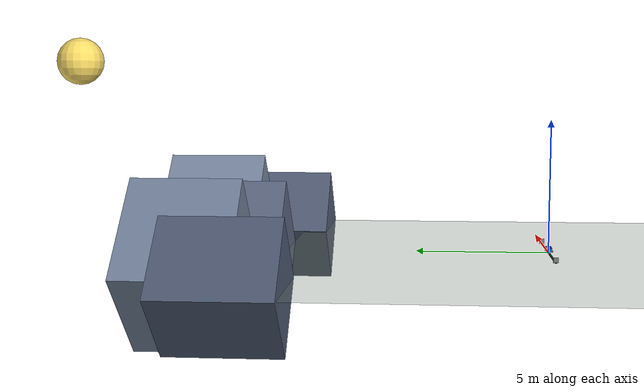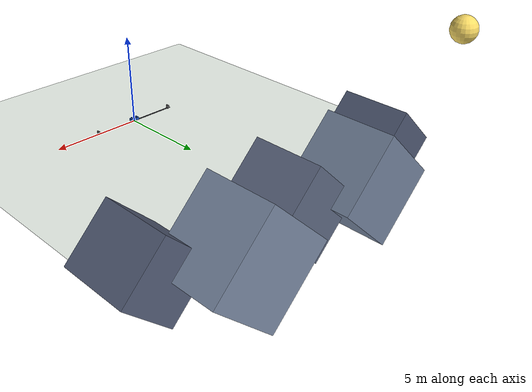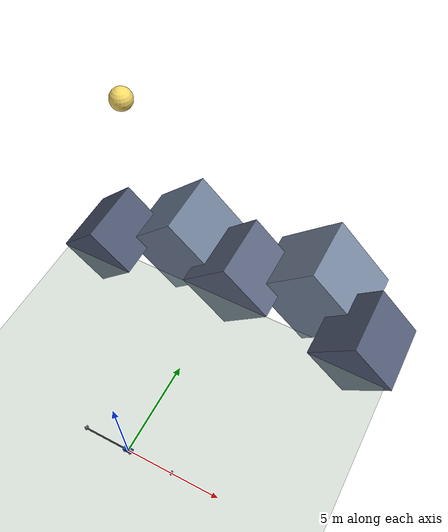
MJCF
<mujoco model="cartpole_world">
  <compiler inertiafromgeom="true" angle="degree"/>
  <option timestep="0.02" gravity="0 0 -9.81"/>
  <default>
    <joint damping="1" armature="0"/>
    <geom contype="1" conaffinity="1" condim="3" friction="0.8 0.1 0.1"/>
  </default>
  <asset>
    <texture name="sky" type="skybox" builtin="gradient" rgb1="0.65 0.80 0.95" rgb2="0.10 0.20 0.35" width="512" height="512"/>
    <texture name="ground_tex" type="2d" builtin="checker" rgb1="0.85 0.85 0.82" rgb2="0.25 0.45 0.30" width="512" height="512" mark="edge" markrgb="0.9 0.9 0.9"/>
    <material name="ground_mat" texture="ground_tex" texrepeat="16 8" texuniform="true" reflectance="0.1"/>
  </asset>
  <visual>
    <headlight diffuse="0.7 0.7 0.7" ambient="0.4 0.4 0.4" specular="0.1 0.1 0.1"/>
    <map znear="0.01" zfar="80"/>
  </visual>
  <worldbody>
    <light name="top_light" pos="0 -3 6" dir="0 1 -1" diffuse="0.8 0.8 0.8" castshadow="true"/>
    <camera name="side" pos="0 -8.5 2.0" xyaxes="1 0 0 0 0 1" fovy="50"/>
    <geom name="floor" type="plane" pos="0 0 -0.035" size="10 10 0.05" material="ground_mat"/>
    <geom name="track" type="box" pos="0 0 0.015" size="2.6 0.035 0.015" rgba="0.20 0.20 0.22 1"/>
    <geom name="left_stop" type="box" pos="-2.45 0 0.10" size="0.035 0.09 0.10" rgba="0.45 0.45 0.45 1"/>
    <geom name="right_stop" type="box" pos="2.45 0 0.10" size="0.035 0.09 0.10" rgba="0.45 0.45 0.45 1"/>
    <geom name="mtn1" type="box" pos="-8 11 -0.035" euler="0 45 0" size="1.6 2.0 1.6" rgba="0.30 0.34 0.44 1" contype="0" conaffinity="0"/>
    <geom name="mtn2" type="box" pos="-4 13 -0.035" euler="0 45 0" size="2.2 2.0 2.2" rgba="0.44 0.50 0.60 1" contype="0" conaffinity="0"/>
    <geom name="mtn3" type="box" pos="0 12 -0.035" euler="0 45 0" size="1.9 2.0 1.9" rgba="0.36 0.40 0.50 1" contype="0" conaffinity="0"/>
    <geom name="mtn4" type="box" pos="4.5 13.5 -0.035" euler="0 45 0" size="2.4 2.0 2.4" rgba="0.47 0.53 0.63 1" contype="0" conaffinity="0"/>
    <geom name="mtn5" type="box" pos="8 11 -0.035" euler="0 45 0" size="1.7 2.0 1.7" rgba="0.32 0.36 0.46 1" contype="0" conaffinity="0"/>
    <geom name="sun" type="sphere" pos="-9 15 7" size="0.7" rgba="0.98 0.86 0.4 1" contype="0" conaffinity="0"/>
    <body name="cart" pos="0 0 0.13">
      <joint name="slider" type="slide" axis="1 0 0" limited="true" range="-2.4 2.4"/>
      <geom name="cart_body" type="box" size="0.24 0.12 0.07" rgba="0.10 0.33 0.75 1" mass="1.0"/>
      <geom name="cart_top" type="box" pos="0 0 0.08" size="0.14 0.09 0.025" rgba="0.08 0.22 0.55 1" mass="0.05"/>
      <geom name="left_wheel" type="sphere" pos="-0.15 -0.13 -0.06" size="0.035" rgba="0.05 0.05 0.05 1" mass="0.02"/>
      <geom name="right_wheel" type="sphere" pos="0.15 -0.13 -0.06" size="0.035" rgba="0.05 0.05 0.05 1" mass="0.02"/>
      <body name="pole" pos="0 0 0.13">
        <joint name="hinge" type="hinge" axis="0 1 0" limited="false"/>
        <geom name="pole_bar" type="box" pos="0 0 0.42" size="0.025 0.025 0.42" rgba="0.95 0.48 0.10 1" mass="0.1"/>
        <geom name="pole_tip" type="box" pos="0 0 0.86" size="0.06 0.025 0.025" rgba="0.95 0.48 0.10 1" mass="0.01"/>
      </body>
    </body>
  </worldbody>
  <actuator>
    <motor name="slide_motor" joint="slider" gear="100" ctrllimited="true" ctrlrange="-3 3"/>
  </actuator>
</mujoco>
